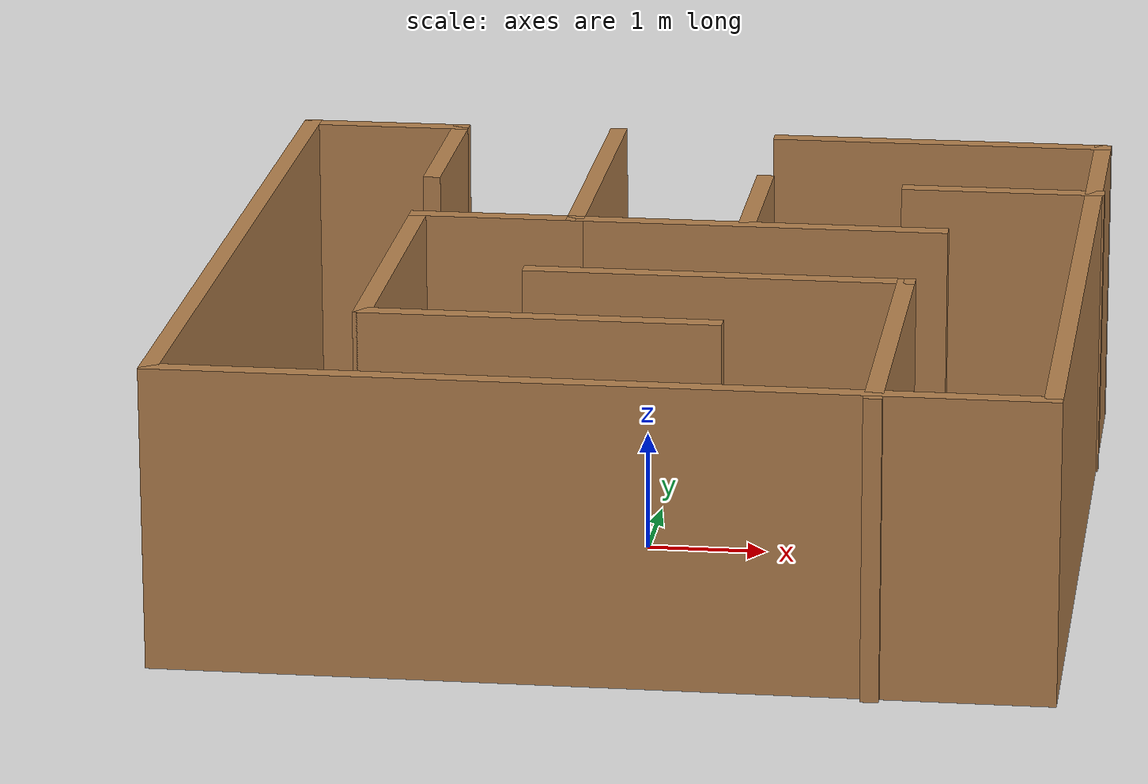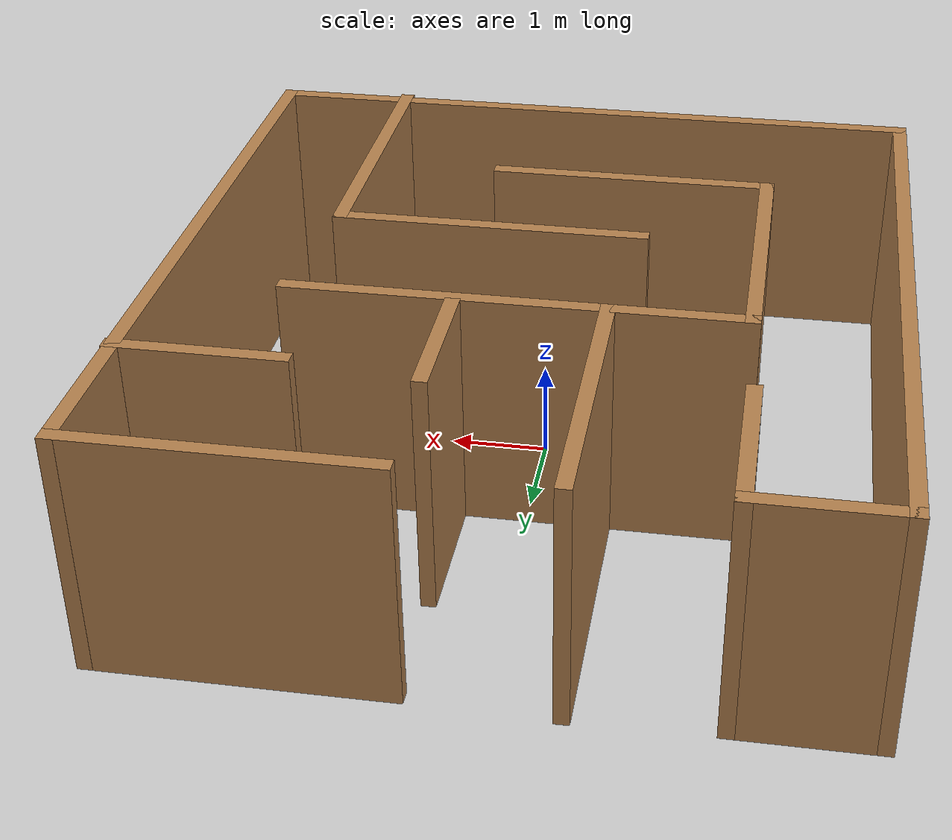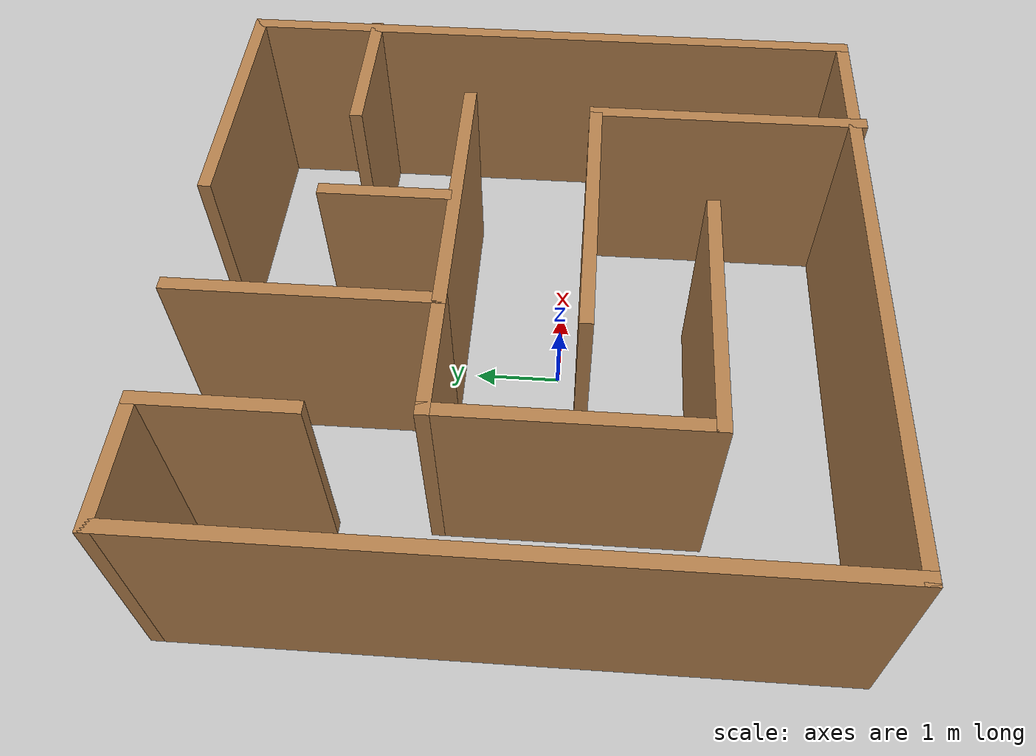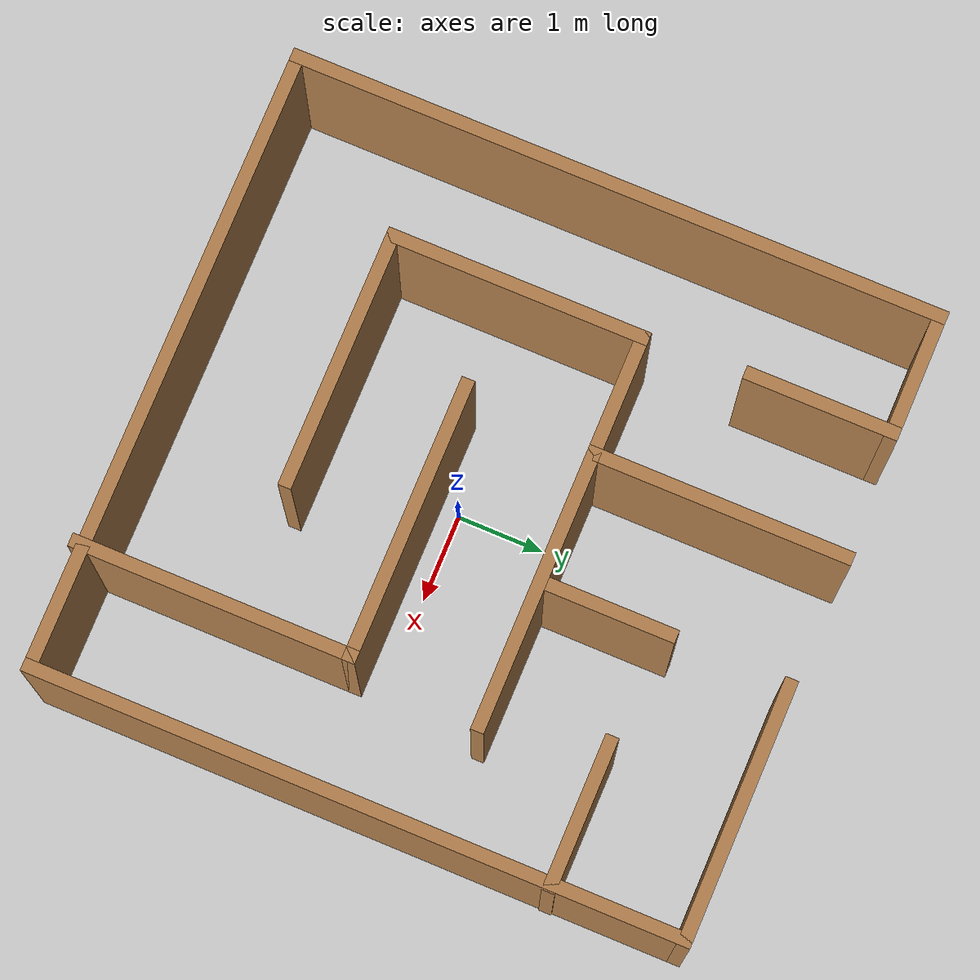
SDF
<?xml version='1.0'?>
<sdf version='1.6'>
  <model name='simple_maze'>
    <pose frame=''>0.020883 0.345673 0 0 -0 0</pose>
    <link name='Wall_0'>
      <collision name='Wall_0_Collision'>
        <geometry>
          <box>
            <size>1.75 0.15 2.5</size>
          </box>
        </geometry>
        <pose frame=''>0 0 1.25 0 -0 0</pose>
      </collision>
      <visual name='Wall_0_Visual'>
        <pose frame=''>0 0 1.25 0 -0 0</pose>
        <geometry>
          <box>
            <size>1.75 0.15 2.5</size>
          </box>
        </geometry>
        <material>
          <script>
            <uri>file://media/materials/scripts/gazebo.material</uri>
            <name>Gazebo/Wood</name>
          </script>
          <ambient>1 1 1 1</ambient>
        </material>
        <meta>
          <layer>0</layer>
        </meta>
      </visual>
      <pose frame=''>-2.2083 2.88899 0 0 -0 1.5708</pose>
    </link>
    <link name='Wall_1'>
      <collision name='Wall_1_Collision'>
        <geometry>
          <box>
            <size>1.5 0.15 2.5</size>
          </box>
        </geometry>
        <pose frame=''>0 0 1.25 0 -0 0</pose>
      </collision>
      <visual name='Wall_1_Visual'>
        <pose frame=''>0 0 1.25 0 -0 0</pose>
        <geometry>
          <box>
            <size>1.5 0.15 2.5</size>
          </box>
        </geometry>
        <material>
          <script>
            <uri>file://media/materials/scripts/gazebo.material</uri>
            <name>Gazebo/Wood</name>
          </script>
          <ambient>1 1 1 1</ambient>
        </material>
        <meta>
          <layer>0</layer>
        </meta>
      </visual>
      <pose frame=''>-2.8833 3.68899 0 0 -0 3.14159</pose>
    </link>
    <link name='Wall_11'>
      <collision name='Wall_11_Collision'>
        <geometry>
          <box>
            <size>3 0.15 2.5</size>
          </box>
        </geometry>
        <pose frame=''>0 0 1.25 0 -0 0</pose>
      </collision>
      <visual name='Wall_11_Visual'>
        <pose frame=''>0 0 1.25 0 -0 0</pose>
        <geometry>
          <box>
            <size>3 0.15 2.5</size>
          </box>
        </geometry>
        <material>
          <script>
            <uri>file://media/materials/scripts/gazebo.material</uri>
            <name>Gazebo/Wood</name>
          </script>
          <ambient>1 1 1 1</ambient>
        </material>
        <meta>
          <layer>0</layer>
        </meta>
      </visual>
      <pose frame=''>-0.716609 -1.96694 0 0 -0 0</pose>
    </link>
    <link name='Wall_13'>
      <collision name='Wall_13_Collision'>
        <geometry>
          <box>
            <size>3.25 0.15 2.5</size>
          </box>
        </geometry>
        <pose frame=''>0 0 1.25 0 -0 0</pose>
      </collision>
      <visual name='Wall_13_Visual'>
        <pose frame=''>0 0 1.25 0 -0 0</pose>
        <geometry>
          <box>
            <size>3.25 0.15 2.5</size>
          </box>
        </geometry>
        <material>
          <script>
            <uri>file://media/materials/scripts/gazebo.material</uri>
            <name>Gazebo/Wood</name>
          </script>
          <ambient>1 1 1 1</ambient>
        </material>
        <meta>
          <layer>0</layer>
        </meta>
      </visual>
      <pose frame=''>0.758391 0.883059 0 0 -0 0</pose>
    </link>
    <link name='Wall_15'>
      <collision name='Wall_15_Collision'>
        <geometry>
          <box>
            <size>1.5 0.15 2.5</size>
          </box>
        </geometry>
        <pose frame=''>0 0 1.25 0 -0 0</pose>
      </collision>
      <visual name='Wall_15_Visual'>
        <pose frame=''>0 0 1.25 0 -0 0</pose>
        <geometry>
          <box>
            <size>1.5 0.15 2.5</size>
          </box>
        </geometry>
        <material>
          <script>
            <uri>file://media/materials/scripts/gazebo.material</uri>
            <name>Gazebo/Wood</name>
          </script>
          <ambient>1 1 1 1</ambient>
        </material>
        <meta>
          <layer>0</layer>
        </meta>
      </visual>
      <pose frame=''>0.672861 1.67204 0 0 -0 -1.5708</pose>
    </link>
    <link name='Wall_17'>
      <collision name='Wall_17_Collision'>
        <geometry>
          <box>
            <size>1.75 0.15 2.5</size>
          </box>
        </geometry>
        <pose frame=''>0 0 1.25 0 -0 0</pose>
      </collision>
      <visual name='Wall_17_Visual'>
        <pose frame=''>0 0 1.25 0 -0 0</pose>
        <geometry>
          <box>
            <size>1.75 0.15 2.5</size>
          </box>
        </geometry>
        <material>
          <script>
            <uri>file://media/materials/scripts/gazebo.material</uri>
            <name>Gazebo/Wood</name>
          </script>
          <ambient>1 1 1 1</ambient>
        </material>
        <meta>
          <layer>0</layer>
        </meta>
      </visual>
      <pose frame=''>2.75831 2.19581 0 0 -0 0</pose>
    </link>
    <link name='Wall_19'>
      <collision name='Wall_19_Collision'>
        <geometry>
          <box>
            <size>3.25 0.15 2.5</size>
          </box>
        </geometry>
        <pose frame=''>0 0 1.25 0 -0 0</pose>
      </collision>
      <visual name='Wall_19_Visual'>
        <pose frame=''>0 0 1.25 0 -0 0</pose>
        <geometry>
          <box>
            <size>3.25 0.15 2.5</size>
          </box>
        </geometry>
        <material>
          <script>
            <uri>file://media/materials/scripts/gazebo.material</uri>
            <name>Gazebo/Wood</name>
          </script>
          <ambient>1 1 1 1</ambient>
        </material>
        <meta>
          <layer>0</layer>
        </meta>
      </visual>
      <pose frame=''>0.601735 -0.633059 0 0 -0 0</pose>
    </link>
    <link name='Wall_2'>
      <collision name='Wall_2_Collision'>
        <geometry>
          <box>
            <size>7.5 0.15 2.5</size>
          </box>
        </geometry>
        <pose frame=''>0 0 1.25 0 -0 0</pose>
      </collision>
      <visual name='Wall_2_Visual'>
        <pose frame=''>0 0 1.25 0 -0 0</pose>
        <geometry>
          <box>
            <size>7.5 0.15 2.5</size>
          </box>
        </geometry>
        <material>
          <script>
            <uri>file://media/materials/scripts/gazebo.material</uri>
            <name>Gazebo/Wood</name>
          </script>
          <ambient>1 1 1 1</ambient>
        </material>
        <meta>
          <layer>0</layer>
        </meta>
      </visual>
      <pose frame=''>-3.5583 0.013993 0 0 -0 -1.5708</pose>
    </link>
    <link name='Wall_20'>
      <collision name='Wall_20_Collision'>
        <geometry>
          <box>
            <size>3.25 0.15 2.5</size>
          </box>
        </geometry>
        <pose frame=''>0 0 1.25 0 -0 0</pose>
      </collision>
      <visual name='Wall_20_Visual'>
        <pose frame=''>0 0 1.25 0 -0 0</pose>
        <geometry>
          <box>
            <size>3.25 0.15 2.5</size>
          </box>
        </geometry>
        <material>
          <script>
            <uri>file://media/materials/scripts/gazebo.material</uri>
            <name>Gazebo/Wood</name>
          </script>
          <ambient>1 1 1 1</ambient>
        </material>
        <meta>
          <layer>0</layer>
        </meta>
      </visual>
      <pose frame=''>2.15173 -2.18306 0 0 -0 -1.5708</pose>
    </link>
    <link name='Wall_3'>
      <collision name='Wall_3_Collision'>
        <geometry>
          <box>
            <size>7.25 0.15 2.5</size>
          </box>
        </geometry>
        <pose frame=''>0 0 1.25 0 -0 0</pose>
      </collision>
      <visual name='Wall_3_Visual'>
        <pose frame=''>0 0 1.25 0 -0 0</pose>
        <geometry>
          <box>
            <size>7.25 0.15 2.5</size>
          </box>
        </geometry>
        <material>
          <script>
            <uri>file://media/materials/scripts/gazebo.material</uri>
            <name>Gazebo/Wood</name>
          </script>
          <ambient>1 1 1 1</ambient>
        </material>
        <meta>
          <layer>0</layer>
        </meta>
      </visual>
      <pose frame=''>-0.008304 -3.66101 0 0 -0 0</pose>
    </link>
    <link name='Wall_4'>
      <collision name='Wall_4_Collision'>
        <geometry>
          <box>
            <size>7.5 0.15 2.5</size>
          </box>
        </geometry>
        <pose frame=''>0 0 1.25 0 -0 0</pose>
      </collision>
      <visual name='Wall_4_Visual'>
        <pose frame=''>0 0 1.25 0 -0 0</pose>
        <geometry>
          <box>
            <size>7.5 0.15 2.5</size>
          </box>
        </geometry>
        <material>
          <script>
            <uri>file://media/materials/scripts/gazebo.material</uri>
            <name>Gazebo/Wood</name>
          </script>
          <ambient>1 1 1 1</ambient>
        </material>
        <meta>
          <layer>0</layer>
        </meta>
      </visual>
      <pose frame=''>3.5417 0.013993 0 0 -0 1.5708</pose>
    </link>
    <link name='Wall_5'>
      <collision name='Wall_5_Collision'>
        <geometry>
          <box>
            <size>3 0.15 2.5</size>
          </box>
        </geometry>
        <pose frame=''>0 0 1.25 0 -0 0</pose>
      </collision>
      <visual name='Wall_5_Visual'>
        <pose frame=''>0 0 1.25 0 -0 0</pose>
        <geometry>
          <box>
            <size>3 0.15 2.5</size>
          </box>
        </geometry>
        <material>
          <script>
            <uri>file://media/materials/scripts/gazebo.material</uri>
            <name>Gazebo/Wood</name>
          </script>
          <ambient>1 1 1 1</ambient>
        </material>
        <meta>
          <layer>0</layer>
        </meta>
      </visual>
      <pose frame=''>2.1167 3.68899 0 0 -0 3.14159</pose>
    </link>
    <link name='Wall_7'>
      <collision name='Wall_7_Collision'>
        <geometry>
          <box>
            <size>3 0.15 2.5</size>
          </box>
        </geometry>
        <pose frame=''>0 0 1.25 0 -0 0</pose>
      </collision>
      <visual name='Wall_7_Visual'>
        <pose frame=''>0 0 1.25 0 -0 0</pose>
        <geometry>
          <box>
            <size>3 0.15 2.5</size>
          </box>
        </geometry>
        <material>
          <script>
            <uri>file://media/materials/scripts/gazebo.material</uri>
            <name>Gazebo/Wood</name>
          </script>
          <ambient>1 1 1 1</ambient>
        </material>
        <meta>
          <layer>0</layer>
        </meta>
      </visual>
      <pose frame=''>-0.791609 2.30806 0 0 -0 -1.5708</pose>
    </link>
    <link name='Wall_8'>
      <collision name='Wall_8_Collision'>
        <geometry>
          <box>
            <size>1.5 0.15 2.5</size>
          </box>
        </geometry>
        <pose frame=''>0 0 1.25 0 -0 0</pose>
      </collision>
      <visual name='Wall_8_Visual'>
        <pose frame=''>0 0 1.25 0 -0 0</pose>
        <geometry>
          <box>
            <size>1.5 0.15 2.5</size>
          </box>
        </geometry>
        <material>
          <script>
            <uri>file://media/materials/scripts/gazebo.material</uri>
            <name>Gazebo/Wood</name>
          </script>
          <ambient>1 1 1 1</ambient>
        </material>
        <meta>
          <layer>0</layer>
        </meta>
      </visual>
      <pose frame=''>-1.46661 0.883059 0 0 -0 3.14159</pose>
    </link>
    <link name='Wall_9'>
      <collision name='Wall_9_Collision'>
        <geometry>
          <box>
            <size>3 0.15 2.5</size>
          </box>
        </geometry>
        <pose frame=''>0 0 1.25 0 -0 0</pose>
      </collision>
      <visual name='Wall_9_Visual'>
        <pose frame=''>0 0 1.25 0 -0 0</pose>
        <geometry>
          <box>
            <size>3 0.15 2.5</size>
          </box>
        </geometry>
        <material>
          <script>
            <uri>file://media/materials/scripts/gazebo.material</uri>
            <name>Gazebo/Wood</name>
          </script>
          <ambient>1 1 1 1</ambient>
        </material>
        <meta>
          <layer>0</layer>
        </meta>
      </visual>
      <pose frame=''>-2.14161 -0.541941 0 0 -0 -1.5708</pose>
    </link>
    <static>1</static>
  </model>
</sdf>
